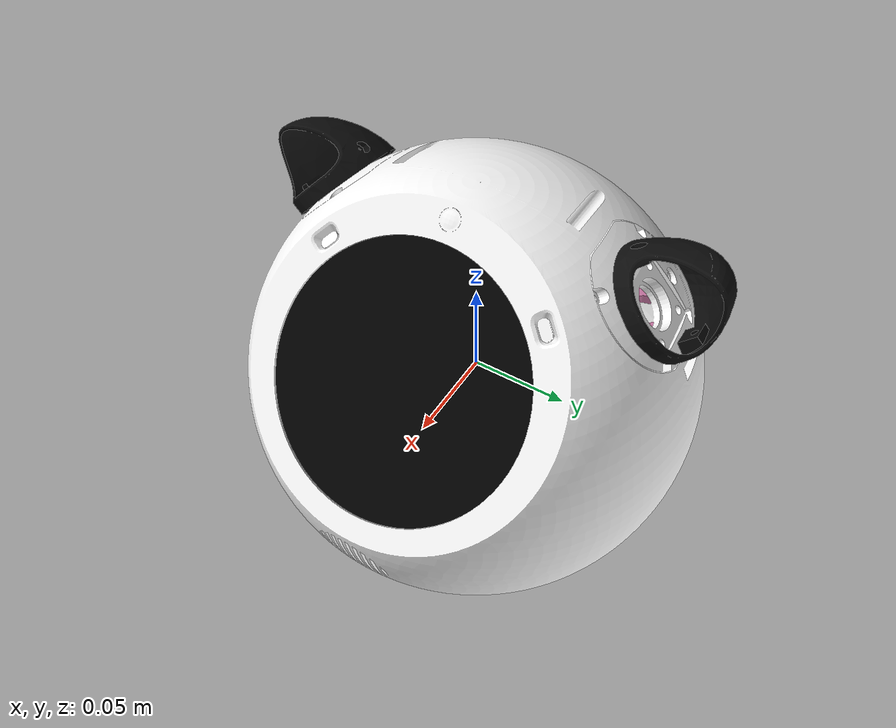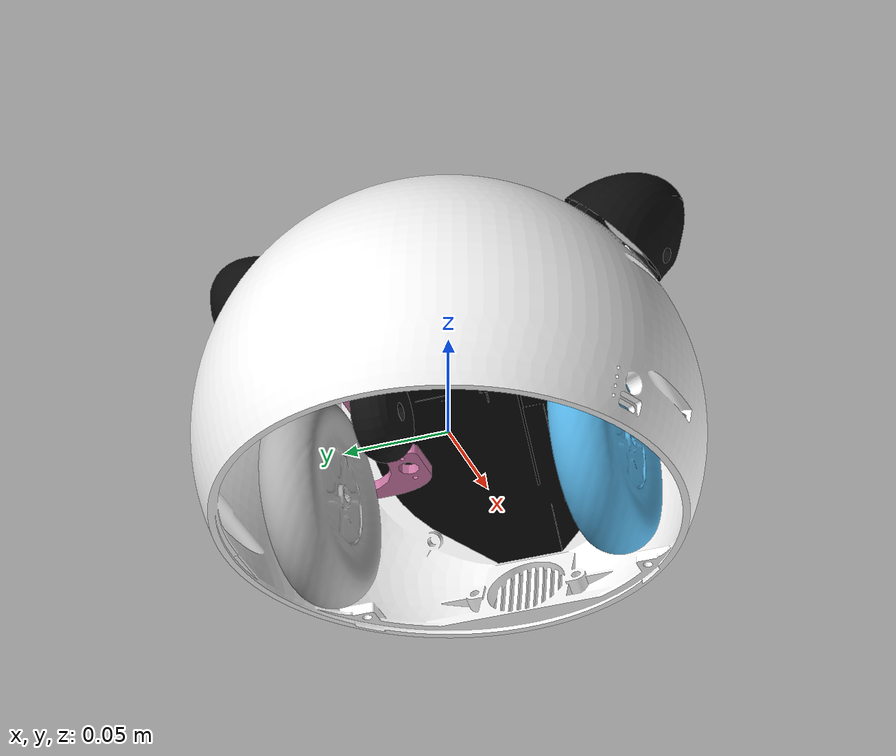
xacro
<?xml version="1.0"?>
<robot xmlns:xacro="http://www.ros.org/wiki/xacro">
    <xacro:include filename="$(find edie_description)/urdf/inertial_macros.xacro"/>
    <xacro:property name="wheel_radius" value="0.05"/>
    <xacro:property name="wheel_length" value="0.029"/>
    <xacro:property name="wheel_separation" value="0.136"/>

    <material name="white">
	    <color rgba="1 1 1 1"/>
	</material>

	<material name="black">
	    <color rgba="0 0 0 1"/>
	</material>

    <link name="base_footprint">
    </link>

    <joint name="base_joint" type="fixed">
        <parent link="base_footprint"/>
        <child link="base_link"/>
        <origin xyz="0 0 0" rpy="0 0 0"/>
    </joint>

	<link name="base_link">
	</link>

	<joint name="chassis_joint" type="fixed">
	    <parent link="base_link"/>
	    <child link="chassis"/>
	    <origin xyz="0 0 0"/>
	</joint>

	<link name="chassis">
		<visual>
			<origin xyz="0 0 0" rpy="0 0 0"/>
			<geometry>
				<mesh filename="file://$(find edie_description)/meshes/collision/edie8_3_chassis.stl"/>
			</geometry>
			<material name="white"/>
		</visual>
		<collision>
			<origin xyz="0 0 0" rpy="0 0 0"/>
			<geometry>
				<mesh filename="file://$(find edie_description)/meshes/collision/edie8_3_chassis.stl"/>
			</geometry>
		</collision>
		<inertial>
			<origin xyz="0 0 0" rpy="0 0 0"/>
			<mass value="1.9999701"/>
			<inertia ixx="1.5095102e-02" ixy="0.0" ixz="7.5719359e-04" iyy="1.3006131e-02" iyz="0.0" izz="1.9568477e-02" />
		</inertial>
	</link>

	<!-- Display -->
	<link name="display">
		<visual>
			<origin xyz="0 0 0" rpy="0 0 0"/>
			<geometry>
				<mesh filename="file://$(find edie_description)/meshes/visual/edie8_3_display.dae"/>
			</geometry>
			<material name="black"/>
		</visual>
		<collision>
			<origin xyz="0 0 0" rpy="0 0 0"/>
			<geometry>
				<mesh filename="file://$(find edie_description)/meshes/collision/edie8_3_display.stl"/>
			</geometry>
		</collision>
	</link>

	<joint name="display_joint" type="fixed">
		<parent link="chassis"/>
		<child link="display"/>
		<origin xyz="0.064 0 0.05" rpy="0 -2.44346 3.1415"/>
	</joint>

	<!--Left Ear-->

	<link name="left_ear">
		<visual>
			<origin xyz="0 0 0.01" rpy="0 0 0"/>
			<geometry>
				<mesh filename="file://$(find edie_description)/meshes/visual/edie8_3_ear.dae"/>
			</geometry>
		</visual>
		<collision>
			<origin xyz="0 0 0.01" rpy="0 0 0"/>
			<geometry>
				<mesh filename="file://$(find edie_description)/meshes/collision/edie8_3_ear.stl"/>
			</geometry>
		</collision>
		<xacro:inertial_sphere mass="0.001" radius="0.005">
			<origin xyz="0 0 0.01" rpy="0 0 0"/>
		</xacro:inertial_sphere>
	</link>

	<joint name="left_ear_joint" type="revolute">
		<parent link="chassis"/>
		<child link="left_ear"/>
		<origin xyz="-0.011 0.077 0.071" rpy="-0.79 -0.1 0"/>
		<axis xyz='0 0 1'/>
		<limit effort='2' lower='0' upper='1.0472' velocity='3.14'/>
	</joint>

	<!--Right Ear-->
	<link name="right_ear">
		<visual>
			<origin xyz="0 0 0.01" rpy="0 0 0"/>
			<geometry>
				<mesh filename="file://$(find edie_description)/meshes/visual/edie8_3_ear.dae"/>
			</geometry>
		</visual>
		<collision>
			<origin xyz="0 0 0.01" rpy="0 0 0"/>
			<geometry>
				<mesh filename="file://$(find edie_description)/meshes/collision/edie8_3_ear.stl"/>
			</geometry>
		</collision>
		<xacro:inertial_sphere mass="0.001" radius="0.005">
			<origin xyz="0 0 0.01" rpy="0 0 0"/>
		</xacro:inertial_sphere>
	</link>

	<joint name="right_ear_joint" type="revolute">
		<parent link="chassis"/>
		<child link="right_ear"/>
		<origin xyz="-0.011 -0.077 0.071" rpy="0.79 -0.1 0"/>
		<axis xyz='0 0 -1'/>
		<limit effort='2' lower='0' upper='1.0472' velocity='3.14'/>
	</joint>

	<!-- LEFT LEG -->
	<joint name="left_leg_joint" type="prismatic">
		<parent link="base_link"/>
		<child link="left_leg"/>
		<origin xyz="0.016 0.068 -0.012" rpy="0 0 0"/>
		<axis xyz="0 0 1"/>
		<limit lower="-0.2" upper="0" effort="20.0" velocity="0.2"/>
		<dynamics damping="0.5" friction="0.1"/>
	</joint>

	<link name="left_leg">
		<visual>
			<origin xyz="0 0 0" rpy="0 0 0"/>
			<geometry>
				<mesh filename="file://$(find edie_description)/meshes/collision/edie8_3_left_leg.stl"/>
			</geometry>
		</visual>
		<collision>
			<origin xyz="0 0 0" rpy="0 0 0"/>
			<geometry>
				<mesh filename="file://$(find edie_description)/meshes/collision/edie8_3_left_leg.stl"/>
			</geometry>
		</collision>
		<inertial>
			<origin xyz="0 0 0" rpy="0 0 0"/>
			<mass value="0.14695881"/>
			<inertia ixx="1.1968607e-04" ixy="6.3793624e-06" ixz="1.3765656e-05" iyy="1.5602252e-04" iyz="-8.9374574e-06" izz="1.8119365e-04" />
		</inertial>
	</link>

	<joint name="left_wheel_joint" type="continuous">
		<parent link="left_leg"/>
		<child link="left_wheel"/>
		<origin xyz="0 0 0" rpy="-${pi / 2.0} 0 0"/>
		<dynamics damping="0.5" friction="0.1"/>
		<axis xyz="0 0 1"/>
	</joint>

	<!-- LEFT WHEEL -->
	<link name="left_wheel">
		<visual>
			<geometry>
				<mesh filename="file://$(find edie_description)/meshes/visual/edie8_3_wheel.dae"/>
			</geometry>
			<origin xyz="0 0 0" rpy="${pi / 2.0} 0 0"/>
		</visual>
		<collision>
			<geometry>
				<mesh filename="file://$(find edie_description)/meshes/collision/edie8_3_wheel.stl"/>
			</geometry>
			<origin xyz="0 0 0" rpy="${pi / 2.0} 0 0"/>
		</collision>
		<inertial>
			<origin xyz="0 0 0" rpy="${pi / 2.0} 0 0"/>
			<mass value="0.03501343"/>
			<inertia ixx="2.2839499e-05" ixy="0.0" ixz="0.0" iyy="4.2280867e-05" iyz="0.0" izz="2.2839494e-05" />
		</inertial>
	</link>

	<!-- RIGHT LEG -->
	<joint name="right_leg_joint" type="prismatic">
		<parent link="base_link"/>
		<child link="right_leg"/>
		<origin xyz="0.016 -0.068 -0.012" rpy="0 0 0"/>
		<axis xyz="0 0 1"/>
		<limit lower="-0.2" upper="0" effort="20.0" velocity="0.2"/>
		<dynamics damping="0.5" friction="0.1"/>
	</joint>

	<link name="right_leg">
		<visual>
			<origin xyz="0 0 0" rpy="0 0 0"/>
			<geometry>
				<mesh filename="file://$(find edie_description)/meshes/collision/edie8_3_right_leg.stl"/>
			</geometry>
		</visual>
		<collision>
			<origin xyz="0 0 0" rpy="0 0 0"/>
			<geometry>
				<mesh filename="file://$(find edie_description)/meshes/collision/edie8_3_right_leg.stl"/>
			</geometry>
		</collision>
		<inertial>
			<origin xyz="0 0 0" rpy="0 0 0"/>
			<mass value="0.14709504"/>
			<inertia ixx="1.1951894e-04" ixy="-6.3560006e-06" ixz="1.3718929e-05" iyy="1.5569796e-04" iyz="8.6462444e-06" izz="1.8135816e-04" />
		</inertial>
	</link>

	<joint name="right_wheel_joint" type="continuous">
		<parent link="right_leg"/>
		<child link="right_wheel"/>
		<origin xyz="0 0 0" rpy="-${pi / 2.0} 0 0"/>
		<dynamics damping="0.5" friction="0.1"/>
		<axis xyz="0 0 1"/>
	</joint>

	<!-- RIGHT WHEEL -->
	<link name="right_wheel">
		<visual>
			<geometry>
				<mesh filename="file://$(find edie_description)/meshes/visual/edie8_3_wheel.dae"/>
			</geometry>
			<origin xyz="0 0 0" rpy="-${pi / 2.0} 0 0"/>
		</visual>
		<collision>
			<geometry>
				<mesh filename="file://$(find edie_description)/meshes/collision/edie8_3_wheel.stl"/>
			</geometry>
			<origin xyz="0 0 0" rpy="${pi / 2.0} 0 0"/>
		</collision>
		<inertial>
			<origin xyz="0 0 0" rpy="${pi / 2.0} 0 0"/>
			<mass value="0.03501343"/>
			<inertia ixx="2.2839499e-05" ixy="0.0" ixz="0.0" iyy="4.2280867e-05" iyz="0.0" izz="2.2839494e-05" />
		</inertial>
	</link>

	<!-- CASTER WHEEL -->
	<joint name="caster_wheel_joint" type="fixed">
		<parent link="base_link"/>
		<child link="caster_wheel"/>
		<origin xyz="-0.08 0 -0.04" rpy="${pi / 2.0} 0 0"/>
		<axis xyz="0 1 0"/>
	</joint>

	<link name="caster_wheel">
		<visual>
			<geometry>
				<mesh filename="file://$(find edie_description)/meshes/visual/edie8_3_caster_wheel.dae"/>
			</geometry>
			<origin xyz="0 0 0" rpy="${pi / 2.0} 0 0"/>
		</visual>
		<collision>
			<geometry>
				<mesh filename="file://$(find edie_description)/meshes/collision/edie8_3_caster_wheel.stl"/>
			</geometry>
			<origin xyz="0 0 0" rpy="${pi / 2.0} 0 0"/>
		</collision>
		<inertial>
			<origin xyz="0 0 0" rpy="0 0 0"/>
			<mass value="0.027500956"/>
			  <inertia ixx="3.2183984e-06" ixy="0.0" ixz="0.0" iyy="5.2677574e-06" iyz="0.0" izz="3.2183987e-06" />
		</inertial>
	</link>

</robot>
